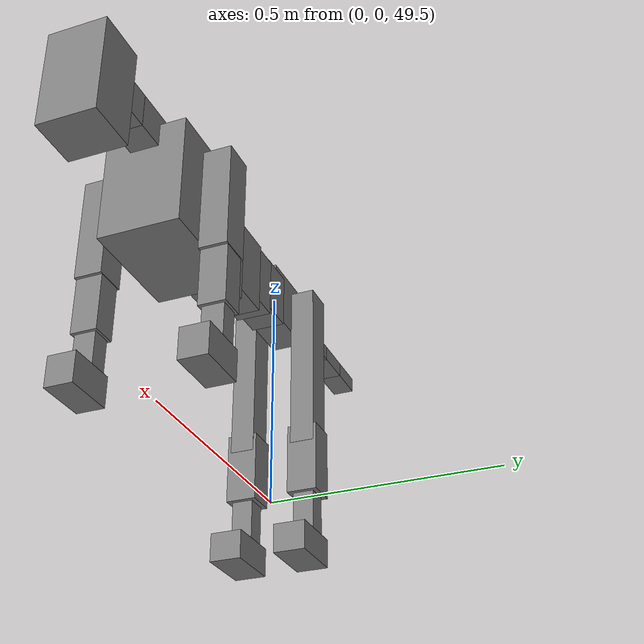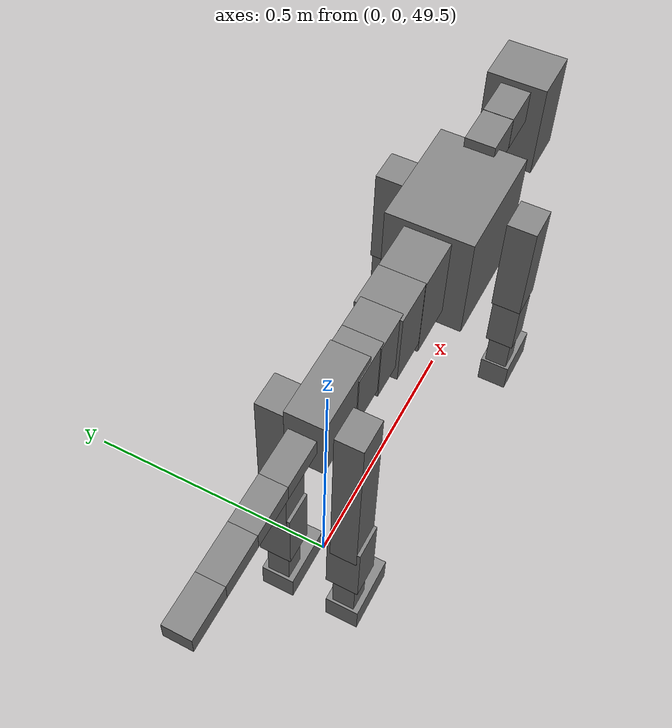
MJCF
<mujoco model="dog">

    <default>
        <joint armature="0.02" stiffness="1" damping="0.2" limited="true"/>
        <geom condim="3" friction="1 0.05 0.05" margin="0.01"/>
        <motor ctrllimited="true" ctrlrange="-1.0 1.0" forcelimited="true" gear="50"/>
    </default>

    <compiler inertiafromgeom="true" angle="radian"/>

    <option timestep="0.016" iterations="50" tolerance="1e-10" solver="Newton" jacobian="dense" cone="pyramidal"/>

    <size nconmax="20000" njmax="60000" nstack="5000000"/>
    <visual>
        <map force="0.1" zfar="30"/>
        <rgba haze="0.15 0.25 0.35 1"/>
        <quality shadowsize="2048"/>
        <global offwidth="800" offheight="800"/>
    </visual>

    <asset>
        <texture type="skybox" builtin="gradient" rgb1="0.3 0.5 0.7" rgb2="0 0 0" width="512" height="512"/>
        <texture name="texplane" type="2d" builtin="checker" rgb1=".2 .3 .4" rgb2=".1 0.15 0.2" width="512" height="512"
                 mark="cross" markrgb=".8 .8 .8"/>
        <texture name="texgeom" type="cube" builtin="flat" mark="cross" width="127" height="1278" rgb1="0.8 0.6 0.4"
                 rgb2="0.8 0.6 0.4" markrgb="1 1 1" random="0.01"/>

        <material name="matplane" reflectance="0.3" texture="texplane" texrepeat="1 1" texuniform="true"/>
        <material name="matgeom" texture="texgeom" texuniform="true" rgba="0.8 0.6 .4 1"/>
    </asset>

    <worldbody>
        <geom name="floor" pos="0 0 0" size="0 0 .25" type="plane" material="matplane" condim="3"/>

        <light directional="false" diffuse=".2 .2 .2" specular="0 0 0" pos="0 0 5" dir="0 0 -1" castshadow="false"/>
        <light mode="targetbodycom" target="torso" directional="false" diffuse=".8 .8 .8" specular="0.3 0.3 0.3"
               pos="0 0 4.0" dir="0 0 -1"/>

        <body name="root" pos="0 0 50">
            <freejoint name="root_1"/>
            <geom type="box" pos="0 0 -0.02" size="0.0774  0.0358  0.063" density="2030"/>

            <body name="spine1" pos="0.054 0 0">
                <joint name="spine1_y" axis="0 1 0" range="0 0.7" limited="true"/>
                <geom type="box" pos="0.02375 0 -0.03" size="0.04375  0.0375  0.05985" density="2030"/>

                <body name="spine2" pos="0.0612 0 0">
                    <joint name="spine2_y" axis="0 1 0" range="-0.15 0.15" limited="true"/>
                    <geom type="box" pos="0.03555  0  -0.04" size="0.04055  0.039  0.06615" density="2030"/>

                    <body name="spine3" pos="0.0730 0 0">
                        <joint name="spine3_y" axis="0 1 0" range="-0.15 0.15" limited="true"/>
                        <geom type="box" pos="0.03555  0  -0.057" size="0.04555  0.0445  0.081" density="2030"/>

                        <body name="spine4" pos="0.0780 0 0">
                            <joint name="spine4_y" axis="0 1 0" range="-0.15 0.15" limited="true"/>
                            <geom type="box" pos="0.05265  0  -0.07" size="0.05265  0.045  0.09135" density="2030"/>

                            <body name="torso" pos="0.1082 0 0">
                                <joint name="torso_y" axis="0 1 0" range="-0.15 0.15" limited="true"/>
                                <geom type="box" pos="0.11925  0  -0.085" size="0.11925  0.085  0.11745"
                                      density="2030"/>

                                <body name="neck1" pos="0.2160  0   0.0180">
                                    <joint name="neck1_y" axis="0 1 0" range="-1.2  -1" limited="true"/>
                                    <geom type="box" pos="0.0423  0  0" size="0.0423  0.03  0.036" density="2325"/>

                                    <body name="neck2" pos="0.0853  0  0">
                                        <joint name="neck2_y" axis="0 1 0" range="0.1  0" limited="true"/>
                                        <geom type="box" pos="0.0423  0  0" size="0.0423  0.03  0.036" density="2325"/>

                                        <body name="head" pos="0.0853  0  0">
                                            <joint name="head_y" axis="0 1 0" range="-0.3  -0.2" limited="true"/>
                                            <geom type="box" pos="0.0531  0  -0.055" size="0.0531  0.06  0.1044"
                                                  density="4030"/>

                                        </body>
                                    </body>
                                </body>

                                <body name="front_shoulder" pos="0.156  0   -0.0480">
                                    <joint name="front_shoulder_y" axis="0 1 0" range="-1 1.5" limited="true"/>
                                    <geom type="box" pos="0 0.13 -0.0833" size="0.0339  0.0289  0.1100" density="1158"/>
                                    <geom type="box" pos="0 -0.13 -0.0833" size="0.0339  0.0289  0.1100"
                                          density="1158"/>

                                    <body name="front_elbow" pos="0  0  -0.1666">
                                        <joint name="front_elbow_y" axis="0 1 0" range="-2 0" limited="true"/>
                                        <geom type="box" pos="0 0.13 -0.0726" size="0.0271  0.0277  0.0726"
                                              density="1081"/>
                                        <geom type="box" pos="0 -0.13 -0.0726" size="0.0271  0.0277  0.0726"
                                              density="1081"/>

                                        <body name="front_wrist" pos="0  0  -0.1452">
                                            <joint name="front_wrist_y" axis="0 1 0" range="-0.2 0" limited="true"/>
                                            <geom type="box" pos="0 0.13 -0.0452" size="0.0201  0.0223  0.0583"
                                                  density="1664"/>
                                            <geom type="box" pos="0 -0.13 -0.0452" size="0.0201  0.0223  0.0583"
                                                  density="1664"/>

                                            <body name="front_finger_end" pos="0  0  -0.0903">
                                                <joint name="front_finger_y" axis="0 1 0" range="-0.4 1"
                                                       limited="true"/>
                                                <geom type="box" pos="0.0293  0.13  -0.0168"
                                                      size="0.0538  0.0293  0.0318" density="1515"/>
                                                <geom type="box" pos="0.0293  -0.13  -0.0168"
                                                      size="0.0538  0.0293  0.0318" density="1515"/>

                                            </body>

                                        </body>
                                    </body>
                                </body>

                            </body>
                        </body>
                    </body>
                </body>
            </body>

            <body name="back_hip" pos="-0.03 0 -0.018">
                <joint name="back_hip_y" axis="0 1 0" range="-1.5 0.3" limited="true"/>
                <geom type="box" pos="0 0.07 -0.1649" size="0.0334  0.0262  0.1877" density="1154"/>
                <geom type="box" pos="0 -0.07 -0.1649" size="0.0334  0.0262  0.1877" density="1154"/>

                <body name="back_knee" pos="0  0  -0.3299">
                    <joint name="back_knee_y" axis="0 1 0" range="0 2.8" limited="true"/>
                    <geom type="box" pos="0 0.07 -0.0599" size="0.0330  0.0326  0.0755" density="1227"/>
                    <geom type="box" pos="0 -0.07 -0.0599" size="0.0330  0.0326  0.0755" density="1227"/>

                    <body name="back_ankle" pos="0  0  -0.1199">
                        <joint name="back_ankle_y" axis="0 1 0" range="-2.2 0" limited="true"/>
                        <geom type="box" pos="0 0.07 -0.0620" size="0.0226  0.0226  0.0732" density="1284"/>
                        <geom type="box" pos="0 -0.07 -0.0620" size="0.0226  0.0226  0.0732" density="1284"/>

                        <body name="back_toe_end" pos="0  0  -0.1240">
                            <joint name="back_toe_y" axis="0 1 0" range="-0.4 1" limited="true"/>
                            <geom type="box" pos="0.0337  0.07  -0.0151" size="0.0618  0.0337  0.0301" density="1515"/>
                            <geom type="box" pos="0.0337  -0.07  -0.0151" size="0.0618  0.0337  0.0301" density="1515"/>

                        </body>
                    </body>
                </body>
            </body>

            <body name="tail1" pos="-0.074 0 -0.006">
                <joint name="tail1_y" axis="0 1 0" range="-0.2 0.2" limited="true"/>
                <geom type="box" pos="-0.0536  0  0" size="0.045  0.025  0.0175" density="1587"/>

                <body name="tail2" pos="-0.09 0 0">
                    <joint name="tail2_y" axis="0 1 0" range="-0.2 0.2" limited="true"/>
                    <geom type="box" pos="-0.0536  0  0" size="0.045  0.025  0.0175" density="1587"/>

                    <body name="tail3" pos="-0.09 0 0">
                        <joint name="tail3_y" axis="0 1 0" range="-0.2 0.2" limited="true"/>
                        <geom type="box" pos="-0.0536  0  0" size="0.045  0.025  0.0175" density="1587"/>

                        <body name="tail4" pos="-0.09 0 0">
                            <joint name="tail4_y" axis="0 1 0" range="-0.2 0.2" limited="true"/>
                            <geom type="box" pos="-0.0536  0  0" size="0.045  0.025  0.0175" density="1587"/>

                        </body>
                    </body>
                </body>
            </body>
        </body>
    </worldbody>

    <actuator>
        <motor joint="spine1_y" forcerange="-150 150     "/>
        <motor joint="spine2_y" forcerange="-150 150     "/>
        <motor joint="spine3_y" forcerange="-150 150     "/>
        <motor joint="spine4_y" forcerange="-150 150     "/>
        <motor joint="torso_y" forcerange="-150 150     "/>
        <motor joint="neck1_y" forcerange="-100 100       "/>
        <motor joint="neck2_y" forcerange="-100 100       "/>
        <motor joint="head_y" forcerange="-150 150       "/>
        <motor joint="front_shoulder_y" forcerange="-107.50 185.42"/>
        <motor joint="front_elbow_y" forcerange="-120.89 180.36"/>
        <motor joint="front_wrist_y" forcerange="-51.56 126.79"/>
        <motor joint="front_finger_y" forcerange="-61.26 55.13"/>
        <motor joint="back_hip_y" forcerange="-340.56 209.17"/>
        <motor joint="back_knee_y" forcerange="-362.53 311.19"/>
        <motor joint="back_angle_y" forcerange="-90.53 170.51"/>
        <motor joint="back_toe_y" forcerange="-84.84 104.95"/>
        <motor joint="tail1_y" forcerange="-50 50     "/>
        <motor joint="tail2_y" forcerange="-50 50     "/>
        <motor joint="tail3_y" forcerange="-50 50     "/>
        <motor joint="tail4_y" forcerange="-50 50     "/>
    </actuator>
</mujoco>
